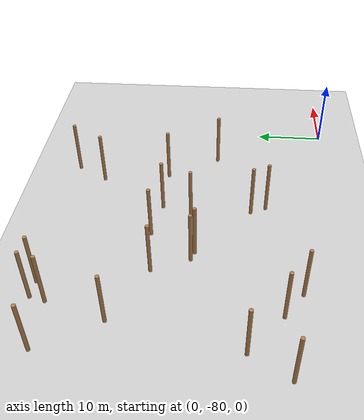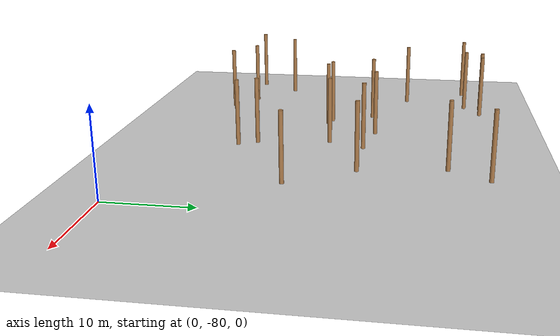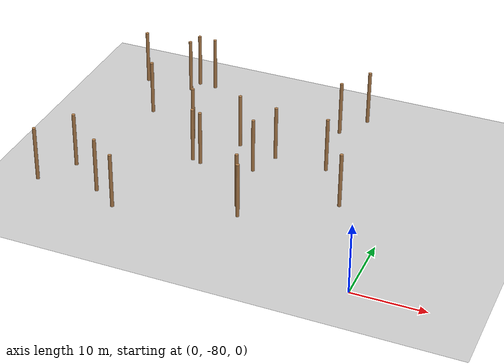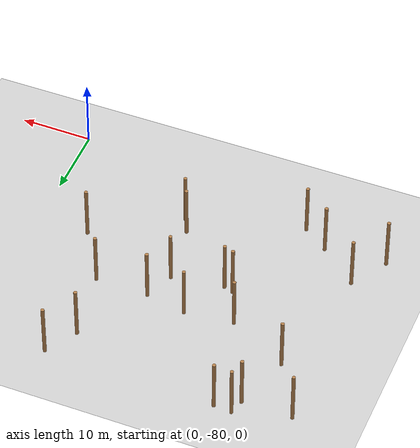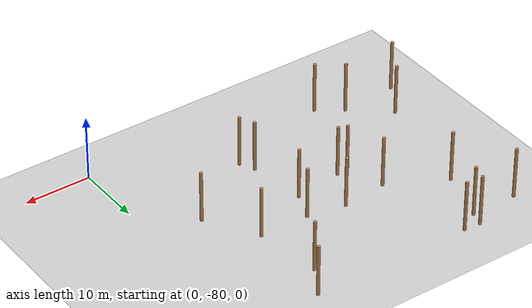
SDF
<sdf version="1.5">
 <world name="padure_tactica">
  <include><uri>model://sun</uri></include>
  <include><uri>model://ground_plane</uri></include>
  <model name="tree_14">
   <static>true</static>
   <pose>-34.74 -41.05 4.0 0 0 0</pose>
   <link name="link">
    <collision name="collision">
     <geometry><cylinder><radius>0.25</radius><length>8.0</length></cylinder></geometry>
    </collision>
    <visual name="visual">
     <geometry><cylinder><radius>0.25</radius><length>8.0</length></cylinder></geometry>
     <material>
      <script><uri>file://media/materials/scripts/gazebo.material</uri><name>Gazebo/Wood</name></script>
     </material>
    </visual>
   </link>
  </model>
  <model name="tree_20">
   <static>true</static>
   <pose>-38.30 -72.48 4.0 0 0 0</pose>
   <link name="link">
    <collision name="collision">
     <geometry><cylinder><radius>0.25</radius><length>8.0</length></cylinder></geometry>
    </collision>
    <visual name="visual">
     <geometry><cylinder><radius>0.25</radius><length>8.0</length></cylinder></geometry>
     <material>
      <script><uri>file://media/materials/scripts/gazebo.material</uri><name>Gazebo/Wood</name></script>
     </material>
    </visual>
   </link>
  </model>
  <model name="tree_34">
   <static>true</static>
   <pose>-34.69 -75.00 4.0 0 0 0</pose>
   <link name="link">
    <collision name="collision">
     <geometry><cylinder><radius>0.25</radius><length>8.0</length></cylinder></geometry>
    </collision>
    <visual name="visual">
     <geometry><cylinder><radius>0.25</radius><length>8.0</length></cylinder></geometry>
     <material>
      <script><uri>file://media/materials/scripts/gazebo.material</uri><name>Gazebo/Wood</name></script>
     </material>
    </visual>
   </link>
  </model>
  <model name="tree_85">
   <static>true</static>
   <pose>-18.64 -70.57 4.0 0 0 0</pose>
   <link name="link">
    <collision name="collision">
     <geometry><cylinder><radius>0.25</radius><length>8.0</length></cylinder></geometry>
    </collision>
    <visual name="visual">
     <geometry><cylinder><radius>0.25</radius><length>8.0</length></cylinder></geometry>
     <material>
      <script><uri>file://media/materials/scripts/gazebo.material</uri><name>Gazebo/Wood</name></script>
     </material>
    </visual>
   </link>
  </model>
  <model name="tree_134">
   <static>true</static>
   <pose>-43.78 -67.95 4.0 0 0 0</pose>
   <link name="link">
    <collision name="collision">
     <geometry><cylinder><radius>0.25</radius><length>8.0</length></cylinder></geometry>
    </collision>
    <visual name="visual">
     <geometry><cylinder><radius>0.25</radius><length>8.0</length></cylinder></geometry>
     <material>
      <script><uri>file://media/materials/scripts/gazebo.material</uri><name>Gazebo/Wood</name></script>
     </material>
    </visual>
   </link>
  </model>
  <model name="tree_166">
   <static>true</static>
   <pose>-37.25 -40.88 4.0 0 0 0</pose>
   <link name="link">
    <collision name="collision">
     <geometry><cylinder><radius>0.25</radius><length>8.0</length></cylinder></geometry>
    </collision>
    <visual name="visual">
     <geometry><cylinder><radius>0.25</radius><length>8.0</length></cylinder></geometry>
     <material>
      <script><uri>file://media/materials/scripts/gazebo.material</uri><name>Gazebo/Wood</name></script>
     </material>
    </visual>
   </link>
  </model>
  <model name="tree_274">
   <static>true</static>
   <pose>-10.66 -41.40 4.0 0 0 0</pose>
   <link name="link">
    <collision name="collision">
     <geometry><cylinder><radius>0.25</radius><length>8.0</length></cylinder></geometry>
    </collision>
    <visual name="visual">
     <geometry><cylinder><radius>0.25</radius><length>8.0</length></cylinder></geometry>
     <material>
      <script><uri>file://media/materials/scripts/gazebo.material</uri><name>Gazebo/Wood</name></script>
     </material>
    </visual>
   </link>
  </model>
  <model name="tree_587">
   <static>true</static>
   <pose>-31.85 -55.32 4.0 0 0 0</pose>
   <link name="link">
    <collision name="collision">
     <geometry><cylinder><radius>0.25</radius><length>8.0</length></cylinder></geometry>
    </collision>
    <visual name="visual">
     <geometry><cylinder><radius>0.25</radius><length>8.0</length></cylinder></geometry>
     <material>
      <script><uri>file://media/materials/scripts/gazebo.material</uri><name>Gazebo/Wood</name></script>
     </material>
    </visual>
   </link>
  </model>
  <model name="tree_632">
   <static>true</static>
   <pose>-29.61 -60.44 4.0 0 0 0</pose>
   <link name="link">
    <collision name="collision">
     <geometry><cylinder><radius>0.25</radius><length>8.0</length></cylinder></geometry>
    </collision>
    <visual name="visual">
     <geometry><cylinder><radius>0.25</radius><length>8.0</length></cylinder></geometry>
     <material>
      <script><uri>file://media/materials/scripts/gazebo.material</uri><name>Gazebo/Wood</name></script>
     </material>
    </visual>
   </link>
  </model>
  <model name="tree_681">
   <static>true</static>
   <pose>-44.85 -42.98 4.0 0 0 0</pose>
   <link name="link">
    <collision name="collision">
     <geometry><cylinder><radius>0.25</radius><length>8.0</length></cylinder></geometry>
    </collision>
    <visual name="visual">
     <geometry><cylinder><radius>0.25</radius><length>8.0</length></cylinder></geometry>
     <material>
      <script><uri>file://media/materials/scripts/gazebo.material</uri><name>Gazebo/Wood</name></script>
     </material>
    </visual>
   </link>
  </model>
  <model name="tree_690">
   <static>true</static>
   <pose>-19.28 -55.60 4.0 0 0 0</pose>
   <link name="link">
    <collision name="collision">
     <geometry><cylinder><radius>0.25</radius><length>8.0</length></cylinder></geometry>
    </collision>
    <visual name="visual">
     <geometry><cylinder><radius>0.25</radius><length>8.0</length></cylinder></geometry>
     <material>
      <script><uri>file://media/materials/scripts/gazebo.material</uri><name>Gazebo/Wood</name></script>
     </material>
    </visual>
   </link>
  </model>
  <model name="tree_706">
   <static>true</static>
   <pose>-20.94 -59.78 4.0 0 0 0</pose>
   <link name="link">
    <collision name="collision">
     <geometry><cylinder><radius>0.25</radius><length>8.0</length></cylinder></geometry>
    </collision>
    <visual name="visual">
     <geometry><cylinder><radius>0.25</radius><length>8.0</length></cylinder></geometry>
     <material>
      <script><uri>file://media/materials/scripts/gazebo.material</uri><name>Gazebo/Wood</name></script>
     </material>
    </visual>
   </link>
  </model>
  <model name="tree_745">
   <static>true</static>
   <pose>-37.83 -42.97 4.0 0 0 0</pose>
   <link name="link">
    <collision name="collision">
     <geometry><cylinder><radius>0.25</radius><length>8.0</length></cylinder></geometry>
    </collision>
    <visual name="visual">
     <geometry><cylinder><radius>0.25</radius><length>8.0</length></cylinder></geometry>
     <material>
      <script><uri>file://media/materials/scripts/gazebo.material</uri><name>Gazebo/Wood</name></script>
     </material>
    </visual>
   </link>
  </model>
  <model name="tree_811">
   <static>true</static>
   <pose>-7.23 -63.12 4.0 0 0 0</pose>
   <link name="link">
    <collision name="collision">
     <geometry><cylinder><radius>0.25</radius><length>8.0</length></cylinder></geometry>
    </collision>
    <visual name="visual">
     <geometry><cylinder><radius>0.25</radius><length>8.0</length></cylinder></geometry>
     <material>
      <script><uri>file://media/materials/scripts/gazebo.material</uri><name>Gazebo/Wood</name></script>
     </material>
    </visual>
   </link>
  </model>
  <model name="tree_834">
   <static>true</static>
   <pose>-19.68 -68.41 4.0 0 0 0</pose>
   <link name="link">
    <collision name="collision">
     <geometry><cylinder><radius>0.25</radius><length>8.0</length></cylinder></geometry>
    </collision>
    <visual name="visual">
     <geometry><cylinder><radius>0.25</radius><length>8.0</length></cylinder></geometry>
     <material>
      <script><uri>file://media/materials/scripts/gazebo.material</uri><name>Gazebo/Wood</name></script>
     </material>
    </visual>
   </link>
  </model>
  <model name="tree_866">
   <static>true</static>
   <pose>-11.81 -55.69 4.0 0 0 0</pose>
   <link name="link">
    <collision name="collision">
     <geometry><cylinder><radius>0.25</radius><length>8.0</length></cylinder></geometry>
    </collision>
    <visual name="visual">
     <geometry><cylinder><radius>0.25</radius><length>8.0</length></cylinder></geometry>
     <material>
      <script><uri>file://media/materials/scripts/gazebo.material</uri><name>Gazebo/Wood</name></script>
     </material>
    </visual>
   </link>
  </model>
  <model name="tree_874">
   <static>true</static>
   <pose>-46.94 -73.09 4.0 0 0 0</pose>
   <link name="link">
    <collision name="collision">
     <geometry><cylinder><radius>0.25</radius><length>8.0</length></cylinder></geometry>
    </collision>
    <visual name="visual">
     <geometry><cylinder><radius>0.25</radius><length>8.0</length></cylinder></geometry>
     <material>
      <script><uri>file://media/materials/scripts/gazebo.material</uri><name>Gazebo/Wood</name></script>
     </material>
    </visual>
   </link>
  </model>
  <model name="tree_980">
   <static>true</static>
   <pose>-28.29 -60.87 4.0 0 0 0</pose>
   <link name="link">
    <collision name="collision">
     <geometry><cylinder><radius>0.25</radius><length>8.0</length></cylinder></geometry>
    </collision>
    <visual name="visual">
     <geometry><cylinder><radius>0.25</radius><length>8.0</length></cylinder></geometry>
     <material>
      <script><uri>file://media/materials/scripts/gazebo.material</uri><name>Gazebo/Wood</name></script>
     </material>
    </visual>
   </link>
  </model>
  <model name="tree_1031">
   <static>true</static>
   <pose>-13.33 -45.83 4.0 0 0 0</pose>
   <link name="link">
    <collision name="collision">
     <geometry><cylinder><radius>0.25</radius><length>8.0</length></cylinder></geometry>
    </collision>
    <visual name="visual">
     <geometry><cylinder><radius>0.25</radius><length>8.0</length></cylinder></geometry>
     <material>
      <script><uri>file://media/materials/scripts/gazebo.material</uri><name>Gazebo/Wood</name></script>
     </material>
    </visual>
   </link>
  </model>
  <model name="tree_1037">
   <static>true</static>
   <pose>-25.01 -54.55 4.0 0 0 0</pose>
   <link name="link">
    <collision name="collision">
     <geometry><cylinder><radius>0.25</radius><length>8.0</length></cylinder></geometry>
    </collision>
    <visual name="visual">
     <geometry><cylinder><radius>0.25</radius><length>8.0</length></cylinder></geometry>
     <material>
      <script><uri>file://media/materials/scripts/gazebo.material</uri><name>Gazebo/Wood</name></script>
     </material>
    </visual>
   </link>
  </model>
  <model name="tree_1088">
   <static>true</static>
   <pose>-40.28 -50.93 4.0 0 0 0</pose>
   <link name="link">
    <collision name="collision">
     <geometry><cylinder><radius>0.25</radius><length>8.0</length></cylinder></geometry>
    </collision>
    <visual name="visual">
     <geometry><cylinder><radius>0.25</radius><length>8.0</length></cylinder></geometry>
     <material>
      <script><uri>file://media/materials/scripts/gazebo.material</uri><name>Gazebo/Wood</name></script>
     </material>
    </visual>
   </link>
  </model>
 </world>
</sdf>
